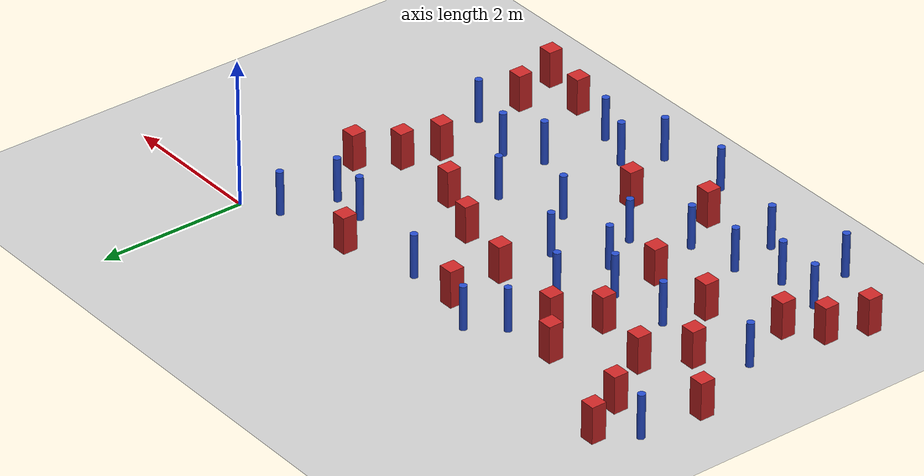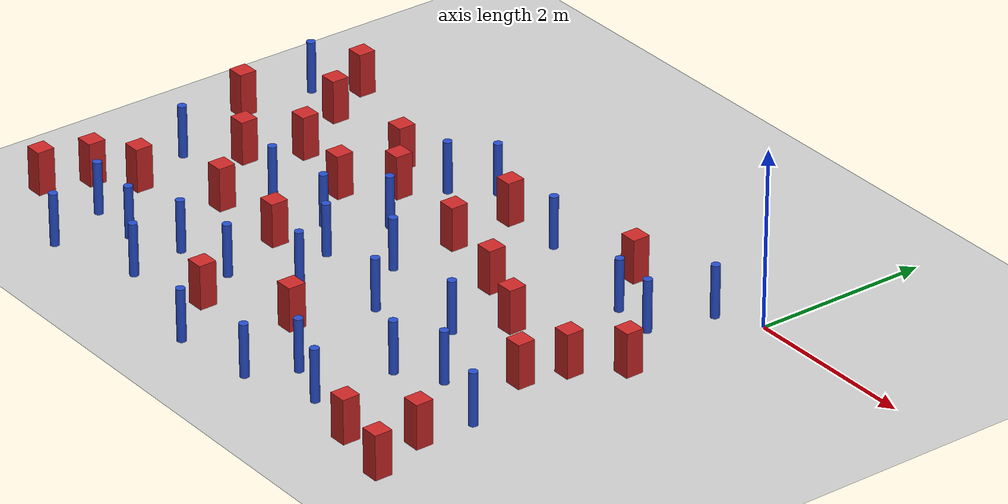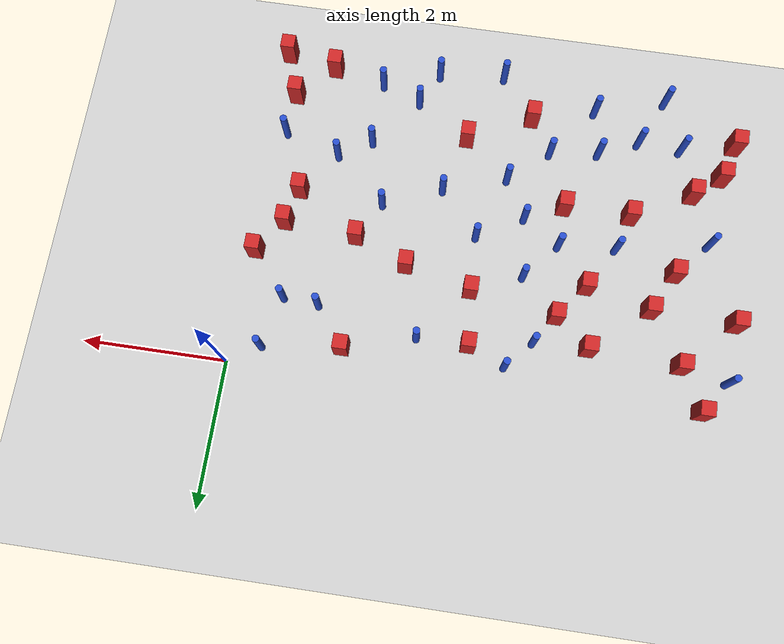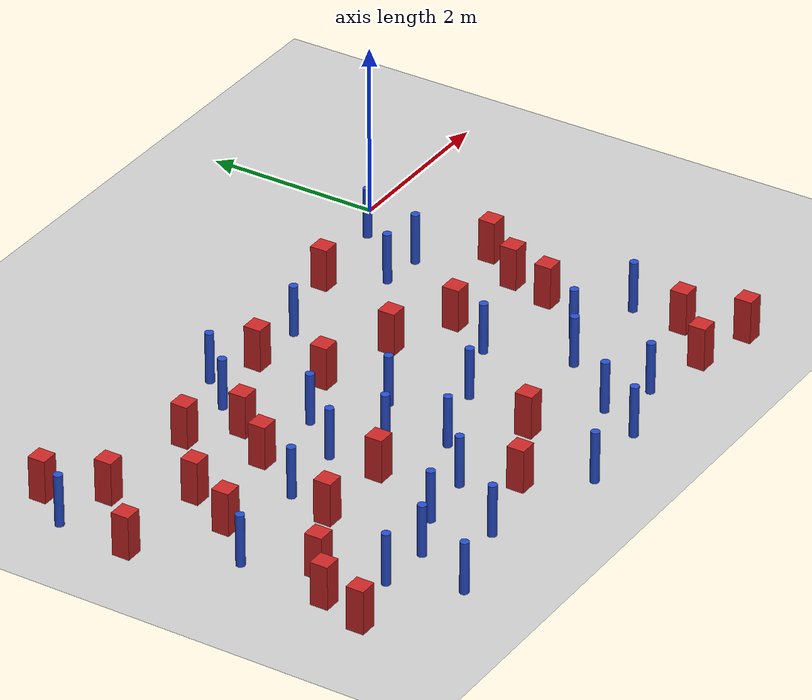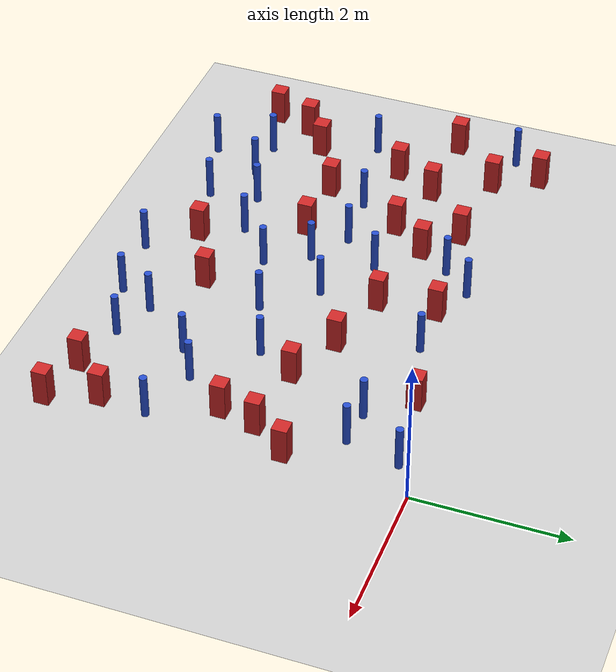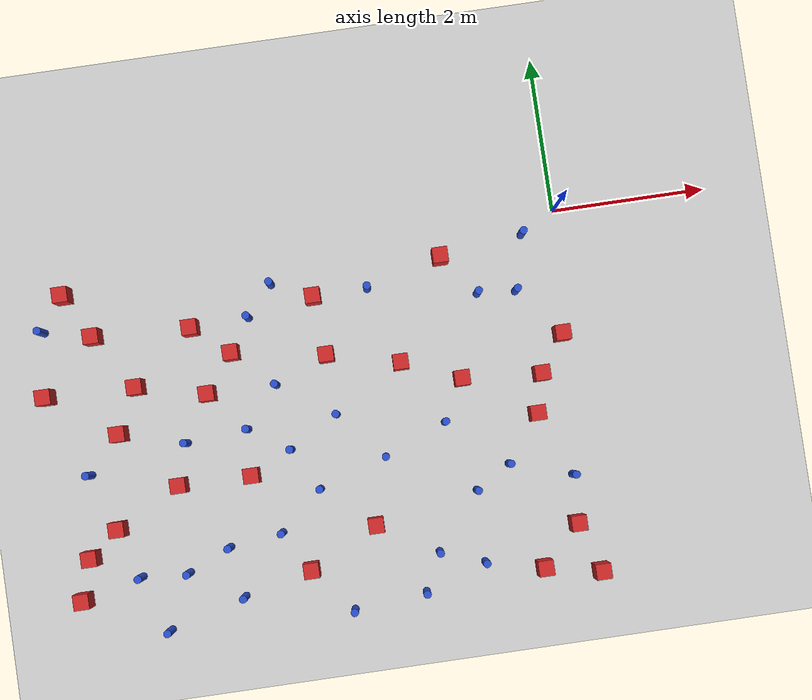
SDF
<sdf version="1.6">
 <world name="default">
  <model name="ground_plane">
   <static>1</static>
   <link name="link">
    <collision name="collision">
     <geometry><plane><normal>0 0 1</normal><size>100 100</size></plane></geometry>
     <surface><friction><ode><mu>100</mu><mu2>50</mu2></ode></friction></surface>
    </collision>
    <visual name="visual">
     <cast_shadows>0</cast_shadows>
     <geometry><plane><normal>0 0 1</normal><size>100 100</size></plane></geometry>
     <material>
      <ambient>1.0 1.0 1.0 1.0</ambient>
      <diffuse>0.8 0.8 0.8 1.0</diffuse>
      <specular>0.01 0.01 0.01 1.000000</specular>
     </material>
    </visual>
   </link>
  </model>
  <model name="pole_obstacle2">
   <static>true</static>
   <pose>-1.79186777275 -2.53418552807 -9.47619616065e-06 5.49618799737e-07 2.36310414062e-07 -1.55090534798e-07</pose>
   <link name="link">
    <pose>0 0 0.3 0 -0 0</pose>
    <inertial>
     <mass>1</mass>
     <inertia><ixx>0.145833</ixx><ixy>0</ixy><ixz>0</ixz><iyy>0.145833</iyy><iyz>0</iyz><izz>0.125</izz></inertia>
    </inertial>
    <collision name="collision">
     <geometry><cylinder><radius>0.05</radius><length>.6</length></cylinder></geometry>
    </collision>
    <visual name="visual">
     <geometry><cylinder><radius>0.05</radius><length>.6</length></cylinder></geometry>
     <material>
      <script><name>Gazebo/Blue</name><uri>file://media/materials/scripts/gazebo.material</uri></script>
     </material>
    </visual>
   </link>
  </model>
  <model name="square_post_obstacle6">
   <static>true</static>
   <pose>-5.98116793809 -2.09496656368 -6.11067671241e-07 -5.50515727128e-06 -8.79689657224e-07 2.37013304536e-05</pose>
   <link name="link">
    <pose>0 0 0.25 0 -0 0</pose>
    <inertial>
     <mass>100</mass>
     <inertia>
      <ixx>0.166667</ixx>
      <ixy>0</ixy>
      <ixz>0</ixz>
      <iyy>0.166667</iyy>
      <iyz>0</iyz>
      <izz>0.166667</izz>
     </inertia>
    </inertial>
    <collision name="collision"><geometry><box><size>.2 .2 .5</size></box></geometry></collision>
    <visual name="visual">
     <geometry><box><size>.2 .2 .5</size></box></geometry>
     <material>
      <script><name>Gazebo/Red</name><uri>file://media/materials/scripts/gazebo.material</uri></script>
     </material>
    </visual>
   </link>
  </model>
  <model name="pole_obstacle9">
   <static>true</static>
   <pose>-5.14063943435 -2.33000956098 -9.47619616065e-06 5.49618799738e-07 2.36310414051e-07 -1.55090534805e-07</pose>
   <link name="link">
    <pose>0 0 0.3 0 -0 0</pose>
    <inertial>
     <mass>1</mass>
     <inertia><ixx>0.145833</ixx><ixy>0</ixy><ixz>0</ixz><iyy>0.145833</iyy><iyz>0</iyz><izz>0.125</izz></inertia>
    </inertial>
    <collision name="collision">
     <geometry><cylinder><radius>0.05</radius><length>.6</length></cylinder></geometry>
    </collision>
    <visual name="visual">
     <geometry><cylinder><radius>0.05</radius><length>.6</length></cylinder></geometry>
     <material>
      <script><name>Gazebo/Blue</name><uri>file://media/materials/scripts/gazebo.material</uri></script>
     </material>
    </visual>
   </link>
  </model>
  <model name="square_post_obstacle17">
   <static>true</static>
   <pose>-5.29909808792 -2.85776680964 -6.11067671241e-07 -5.50515727128e-06 -8.79689657224e-07 2.37013304536e-05</pose>
   <link name="link">
    <pose>0 0 0.25 0 -0 0</pose>
    <inertial>
     <mass>100</mass>
     <inertia>
      <ixx>0.166667</ixx>
      <ixy>0</ixy>
      <ixz>0</ixz>
      <iyy>0.166667</iyy>
      <iyz>0</iyz>
      <izz>0.166667</izz>
     </inertia>
    </inertial>
    <collision name="collision"><geometry><box><size>.2 .2 .5</size></box></geometry></collision>
    <visual name="visual">
     <geometry><box><size>.2 .2 .5</size></box></geometry>
     <material>
      <script><name>Gazebo/Red</name><uri>file://media/materials/scripts/gazebo.material</uri></script>
     </material>
    </visual>
   </link>
  </model>
  <model name="square_post_obstacle19">
   <static>true</static>
   <pose>-3.19186774682 -1.45683344238 -6.11067671241e-07 -5.50515727128e-06 -8.79689657224e-07 2.37013304536e-05</pose>
   <link name="link">
    <pose>0 0 0.25 0 -0 0</pose>
    <inertial>
     <mass>100</mass>
     <inertia>
      <ixx>0.166667</ixx>
      <ixy>0</ixy>
      <ixz>0</ixz>
      <iyy>0.166667</iyy>
      <iyz>0</iyz>
      <izz>0.166667</izz>
     </inertia>
    </inertial>
    <collision name="collision"><geometry><box><size>.2 .2 .5</size></box></geometry></collision>
    <visual name="visual">
     <geometry><box><size>.2 .2 .5</size></box></geometry>
     <material>
      <script><name>Gazebo/Red</name><uri>file://media/materials/scripts/gazebo.material</uri></script>
     </material>
    </visual>
   </link>
  </model>
  <model name="pole_obstacle12">
   <static>true</static>
   <pose>-6.79395257668 -0.647486050733 -9.47619616065e-06 5.49618799737e-07 2.36310414061e-07 -1.550905348e-07</pose>
   <link name="link">
    <pose>0 0 0.3 0 -0 0</pose>
    <inertial>
     <mass>1</mass>
     <inertia><ixx>0.145833</ixx><ixy>0</ixy><ixz>0</ixz><iyy>0.145833</iyy><iyz>0</iyz><izz>0.125</izz></inertia>
    </inertial>
    <collision name="collision">
     <geometry><cylinder><radius>0.05</radius><length>.6</length></cylinder></geometry>
    </collision>
    <visual name="visual">
     <geometry><cylinder><radius>0.05</radius><length>.6</length></cylinder></geometry>
     <material>
      <script><name>Gazebo/Blue</name><uri>file://media/materials/scripts/gazebo.material</uri></script>
     </material>
    </visual>
   </link>
  </model>
  <model name="square_post_obstacle28">
   <static>true</static>
   <pose>-3.76031877844 -4.17054223815 -6.11067671241e-07 -5.50515727128e-06 -8.79689657224e-07 2.37013304536e-05</pose>
   <link name="link">
    <pose>0 0 0.25 0 -0 0</pose>
    <inertial>
     <mass>100</mass>
     <inertia>
      <ixx>0.166667</ixx>
      <ixy>0</ixy>
      <ixz>0</ixz>
      <iyy>0.166667</iyy>
      <iyz>0</iyz>
      <izz>0.166667</izz>
     </inertia>
    </inertial>
    <collision name="collision"><geometry><box><size>.2 .2 .5</size></box></geometry></collision>
    <visual name="visual">
     <geometry><box><size>.2 .2 .5</size></box></geometry>
     <material>
      <script><name>Gazebo/Red</name><uri>file://media/materials/scripts/gazebo.material</uri></script>
     </material>
    </visual>
   </link>
  </model>
  <model name="pole_obstacle29">
   <static>true</static>
   <pose>-0.638371972333 -0.97821930591 -9.47619616065e-06 5.49618799737e-07 2.36310414059e-07 -1.55090534802e-07</pose>
   <link name="link">
    <pose>0 0 0.3 0 -0 0</pose>
    <inertial>
     <mass>1</mass>
     <inertia><ixx>0.145833</ixx><ixy>0</ixy><ixz>0</ixz><iyy>0.145833</iyy><iyz>0</iyz><izz>0.125</izz></inertia>
    </inertial>
    <collision name="collision">
     <geometry><cylinder><radius>0.05</radius><length>.6</length></cylinder></geometry>
    </collision>
    <visual name="visual">
     <geometry><cylinder><radius>0.05</radius><length>.6</length></cylinder></geometry>
     <material>
      <script><name>Gazebo/Blue</name><uri>file://media/materials/scripts/gazebo.material</uri></script>
     </material>
    </visual>
   </link>
  </model>
  <model name="pole_obstacle31">
   <static>true</static>
   <pose>-0.249987154503 -3.43652995144 -9.4761961606e-06 5.49618799729e-07 2.36310413995e-07 -1.55090534826e-07</pose>
   <link name="link">
    <pose>0 0 0.3 0 -0 0</pose>
    <inertial>
     <mass>1</mass>
     <inertia><ixx>0.145833</ixx><ixy>0</ixy><ixz>0</ixz><iyy>0.145833</iyy><iyz>0</iyz><izz>0.125</izz></inertia>
    </inertial>
    <collision name="collision">
     <geometry><cylinder><radius>0.05</radius><length>.6</length></cylinder></geometry>
    </collision>
    <visual name="visual">
     <geometry><cylinder><radius>0.05</radius><length>.6</length></cylinder></geometry>
     <material>
      <script><name>Gazebo/Blue</name><uri>file://media/materials/scripts/gazebo.material</uri></script>
     </material>
    </visual>
   </link>
  </model>
  <model name="square_post_obstacle36">
   <static>true</static>
   <pose>-6.46764427609 -0.218335913427 -6.11067671241e-07 -5.50515727128e-06 -8.79689657224e-07 2.37013304536e-05</pose>
   <link name="link">
    <pose>0 0 0.25 0 -0 0</pose>
    <inertial>
     <mass>100</mass>
     <inertia>
      <ixx>0.166667</ixx>
      <ixy>0</ixy>
      <ixz>0</ixz>
      <iyy>0.166667</iyy>
      <iyz>0</iyz>
      <izz>0.166667</izz>
     </inertia>
    </inertial>
    <collision name="collision"><geometry><box><size>.2 .2 .5</size></box></geometry></collision>
    <visual name="visual">
     <geometry><box><size>.2 .2 .5</size></box></geometry>
     <material>
      <script><name>Gazebo/Red</name><uri>file://media/materials/scripts/gazebo.material</uri></script>
     </material>
    </visual>
   </link>
  </model>
  <model name="square_post_obstacle39">
   <static>true</static>
   <pose>-2.86130558458 -3.72034280299 -6.11067671241e-07 -5.50515727128e-06 -8.79689657224e-07 2.37013304536e-05</pose>
   <link name="link">
    <pose>0 0 0.25 0 -0 0</pose>
    <inertial>
     <mass>100</mass>
     <inertia>
      <ixx>0.166667</ixx>
      <ixy>0</ixy>
      <ixz>0</ixz>
      <iyy>0.166667</iyy>
      <iyz>0</iyz>
      <izz>0.166667</izz>
     </inertia>
    </inertial>
    <collision name="collision"><geometry><box><size>.2 .2 .5</size></box></geometry></collision>
    <visual name="visual">
     <geometry><box><size>.2 .2 .5</size></box></geometry>
     <material>
      <script><name>Gazebo/Red</name><uri>file://media/materials/scripts/gazebo.material</uri></script>
     </material>
    </visual>
   </link>
  </model>
  <model name="pole_obstacle41">
   <static>true</static>
   <pose>-3.283397811 -4.76101472949 -9.4761961606e-06 5.49618799729e-07 2.36310414006e-07 -1.55090534822e-07</pose>
   <link name="link">
    <pose>0 0 0.3 0 -0 0</pose>
    <inertial>
     <mass>1</mass>
     <inertia><ixx>0.145833</ixx><ixy>0</ixy><ixz>0</ixz><iyy>0.145833</iyy><iyz>0</iyz><izz>0.125</izz></inertia>
    </inertial>
    <collision name="collision">
     <geometry><cylinder><radius>0.05</radius><length>.6</length></cylinder></geometry>
    </collision>
    <visual name="visual">
     <geometry><cylinder><radius>0.05</radius><length>.6</length></cylinder></geometry>
     <material>
      <script><name>Gazebo/Blue</name><uri>file://media/materials/scripts/gazebo.material</uri></script>
     </material>
    </visual>
   </link>
  </model>
  <model name="square_post_obstacle42">
   <static>true</static>
   <pose>-6.1515607774 -3.30303571282 -6.11067671241e-07 -5.50515727128e-06 -8.79689657224e-07 2.37013304536e-05</pose>
   <link name="link">
    <pose>0 0 0.25 0 -0 0</pose>
    <inertial>
     <mass>100</mass>
     <inertia>
      <ixx>0.166667</ixx>
      <ixy>0</ixy>
      <ixz>0</ixz>
      <iyy>0.166667</iyy>
      <iyz>0</iyz>
      <izz>0.166667</izz>
     </inertia>
    </inertial>
    <collision name="collision"><geometry><box><size>.2 .2 .5</size></box></geometry></collision>
    <visual name="visual">
     <geometry><box><size>.2 .2 .5</size></box></geometry>
     <material>
      <script><name>Gazebo/Red</name><uri>file://media/materials/scripts/gazebo.material</uri></script>
     </material>
    </visual>
   </link>
  </model>
  <model name="square_post_obstacle56">
   <static>true</static>
   <pose>-4.88189318848 -0.86517226305 -6.11067671241e-07 -5.50515727128e-06 -8.79689657224e-07 2.37013304536e-05</pose>
   <link name="link">
    <pose>0 0 0.25 0 -0 0</pose>
    <inertial>
     <mass>100</mass>
     <inertia>
      <ixx>0.166667</ixx>
      <ixy>0</ixy>
      <ixz>0</ixz>
      <iyy>0.166667</iyy>
      <iyz>0</iyz>
      <izz>0.166667</izz>
     </inertia>
    </inertial>
    <collision name="collision"><geometry><box><size>.2 .2 .5</size></box></geometry></collision>
    <visual name="visual">
     <geometry><box><size>.2 .2 .5</size></box></geometry>
     <material>
      <script><name>Gazebo/Red</name><uri>file://media/materials/scripts/gazebo.material</uri></script>
     </material>
    </visual>
   </link>
  </model>
  <model name="pole_obstacle53">
   <static>true</static>
   <pose>-4.33403917925 -2.2643039477 -9.47619616065e-06 5.49618799738e-07 2.36310414051e-07 -1.55090534805e-07</pose>
   <link name="link">
    <pose>0 0 0.3 0 -0 0</pose>
    <inertial>
     <mass>1</mass>
     <inertia><ixx>0.145833</ixx><ixy>0</ixy><ixz>0</ixz><iyy>0.145833</iyy><iyz>0</iyz><izz>0.125</izz></inertia>
    </inertial>
    <collision name="collision">
     <geometry><cylinder><radius>0.05</radius><length>.6</length></cylinder></geometry>
    </collision>
    <visual name="visual">
     <geometry><cylinder><radius>0.05</radius><length>.6</length></cylinder></geometry>
     <material>
      <script><name>Gazebo/Blue</name><uri>file://media/materials/scripts/gazebo.material</uri></script>
     </material>
    </visual>
   </link>
  </model>
  <model name="pole_obstacle55">
   <static>true</static>
   <pose>-3.89320926153 -1.74636361281 -9.47619616065e-06 5.49618799737e-07 2.3631041403e-07 -1.5509053482e-07</pose>
   <link name="link">
    <pose>0 0 0.3 0 -0 0</pose>
    <inertial>
     <mass>1</mass>
     <inertia><ixx>0.145833</ixx><ixy>0</ixy><ixz>0</ixz><iyy>0.145833</iyy><iyz>0</iyz><izz>0.125</izz></inertia>
    </inertial>
    <collision name="collision">
     <geometry><cylinder><radius>0.05</radius><length>.6</length></cylinder></geometry>
    </collision>
    <visual name="visual">
     <geometry><cylinder><radius>0.05</radius><length>.6</length></cylinder></geometry>
     <material>
      <script><name>Gazebo/Blue</name><uri>file://media/materials/scripts/gazebo.material</uri></script>
     </material>
    </visual>
   </link>
  </model>
  <model name="pole_obstacle63">
   <static>true</static>
   <pose>-3.81595582442 -2.60437558087 -9.47619616065e-06 5.49618799737e-07 2.36310414067e-07 -1.55090534797e-07</pose>
   <link name="link">
    <pose>0 0 0.3 0 -0 0</pose>
    <inertial>
     <mass>1</mass>
     <inertia><ixx>0.145833</ixx><ixy>0</ixy><ixz>0</ixz><iyy>0.145833</iyy><iyz>0</iyz><izz>0.125</izz></inertia>
    </inertial>
    <collision name="collision">
     <geometry><cylinder><radius>0.05</radius><length>.6</length></cylinder></geometry>
    </collision>
    <visual name="visual">
     <geometry><cylinder><radius>0.05</radius><length>.6</length></cylinder></geometry>
     <material>
      <script><name>Gazebo/Blue</name><uri>file://media/materials/scripts/gazebo.material</uri></script>
     </material>
    </visual>
   </link>
  </model>
  <model name="pole_obstacle64">
   <static>true</static>
   <pose>-5.662672163 -4.68568043132 -9.47619616065e-06 5.49618799737e-07 2.36310414037e-07 -1.55090534814e-07</pose>
   <link name="link">
    <pose>0 0 0.3 0 -0 0</pose>
    <inertial>
     <mass>1</mass>
     <inertia><ixx>0.145833</ixx><ixy>0</ixy><ixz>0</ixz><iyy>0.145833</iyy><iyz>0</iyz><izz>0.125</izz></inertia>
    </inertial>
    <collision name="collision">
     <geometry><cylinder><radius>0.05</radius><length>.6</length></cylinder></geometry>
    </collision>
    <visual name="visual">
     <geometry><cylinder><radius>0.05</radius><length>.6</length></cylinder></geometry>
     <material>
      <script><name>Gazebo/Blue</name><uri>file://media/materials/scripts/gazebo.material</uri></script>
     </material>
    </visual>
   </link>
  </model>
  <model name="square_post_obstacle69">
   <static>true</static>
   <pose>-6.54508978789 -3.6239160111 -6.11067671241e-07 -5.50515727128e-06 -8.79689657224e-07 2.37013304536e-05</pose>
   <link name="link">
    <pose>0 0 0.25 0 -0 0</pose>
    <inertial>
     <mass>100</mass>
     <inertia>
      <ixx>0.166667</ixx>
      <ixy>0</ixy>
      <ixz>0</ixz>
      <iyy>0.166667</iyy>
      <iyz>0</iyz>
      <izz>0.166667</izz>
     </inertia>
    </inertial>
    <collision name="collision"><geometry><box><size>.2 .2 .5</size></box></geometry></collision>
    <visual name="visual">
     <geometry><box><size>.2 .2 .5</size></box></geometry>
     <material>
      <script><name>Gazebo/Red</name><uri>file://media/materials/scripts/gazebo.material</uri></script>
     </material>
    </visual>
   </link>
  </model>
  <model name="pole_obstacle74">
   <static>true</static>
   <pose>-2.33988731548 -4.66543023201 -9.47619616065e-06 5.49618799738e-07 2.3631041406e-07 -1.55090534801e-07</pose>
   <link name="link">
    <pose>0 0 0.3 0 -0 0</pose>
    <inertial>
     <mass>1</mass>
     <inertia><ixx>0.145833</ixx><ixy>0</ixy><ixz>0</ixz><iyy>0.145833</iyy><iyz>0</iyz><izz>0.125</izz></inertia>
    </inertial>
    <collision name="collision">
     <geometry><cylinder><radius>0.05</radius><length>.6</length></cylinder></geometry>
    </collision>
    <visual name="visual">
     <geometry><cylinder><radius>0.05</radius><length>.6</length></cylinder></geometry>
     <material>
      <script><name>Gazebo/Blue</name><uri>file://media/materials/scripts/gazebo.material</uri></script>
     </material>
    </visual>
   </link>
  </model>
  <model name="pole_obstacle77">
   <static>true</static>
   <pose>-4.07187399306 -3.64922140474 -9.47619616065e-06 5.49618799738e-07 2.36310414051e-07 -1.55090534805e-07</pose>
   <link name="link">
    <pose>0 0 0.3 0 -0 0</pose>
    <inertial>
     <mass>1</mass>
     <inertia><ixx>0.145833</ixx><ixy>0</ixy><ixz>0</ixz><iyy>0.145833</iyy><iyz>0</iyz><izz>0.125</izz></inertia>
    </inertial>
    <collision name="collision">
     <geometry><cylinder><radius>0.05</radius><length>.6</length></cylinder></geometry>
    </collision>
    <visual name="visual">
     <geometry><cylinder><radius>0.05</radius><length>.6</length></cylinder></geometry>
     <material>
      <script><name>Gazebo/Blue</name><uri>file://media/materials/scripts/gazebo.material</uri></script>
     </material>
    </visual>
   </link>
  </model>
  <model name="pole_obstacle92">
   <static>true</static>
   <pose>-3.78228550767 -0.442074101056 -9.47619616065e-06 5.49618799738e-07 2.36310414074e-07 -1.55090534794e-07</pose>
   <link name="link">
    <pose>0 0 0.3 0 -0 0</pose>
    <inertial>
     <mass>1</mass>
     <inertia><ixx>0.145833</ixx><ixy>0</ixy><ixz>0</ixz><iyy>0.145833</iyy><iyz>0</iyz><izz>0.125</izz></inertia>
    </inertial>
    <collision name="collision">
     <geometry><cylinder><radius>0.05</radius><length>.6</length></cylinder></geometry>
    </collision>
    <visual name="visual">
     <geometry><cylinder><radius>0.05</radius><length>.6</length></cylinder></geometry>
     <material>
      <script><name>Gazebo/Blue</name><uri>file://media/materials/scripts/gazebo.material</uri></script>
     </material>
    </visual>
   </link>
  </model>
  <model name="pole_obstacle93">
   <static>true</static>
   <pose>-6.42854032271 -2.566695863 -9.47619616065e-06 5.49618799738e-07 2.36310414051e-07 -1.55090534805e-07</pose>
   <link name="link">
    <pose>0 0 0.3 0 -0 0</pose>
    <inertial>
     <mass>1</mass>
     <inertia><ixx>0.145833</ixx><ixy>0</ixy><ixz>0</ixz><iyy>0.145833</iyy><iyz>0</iyz><izz>0.125</izz></inertia>
    </inertial>
    <collision name="collision">
     <geometry><cylinder><radius>0.05</radius><length>.6</length></cylinder></geometry>
    </collision>
    <visual name="visual">
     <geometry><cylinder><radius>0.05</radius><length>.6</length></cylinder></geometry>
     <material>
      <script><name>Gazebo/Blue</name><uri>file://media/materials/scripts/gazebo.material</uri></script>
     </material>
    </visual>
   </link>
  </model>
  <model name="pole_obstacle96">
   <static>true</static>
   <pose>-0.458254606706 -0.258063392229 -9.47619616065e-06 5.49618799737e-07 2.36310414049e-07 -1.55090534807e-07</pose>
   <link name="link">
    <pose>0 0 0.3 0 -0 0</pose>
    <inertial>
     <mass>1</mass>
     <inertia><ixx>0.145833</ixx><ixy>0</ixy><ixz>0</ixz><iyy>0.145833</iyy><iyz>0</iyz><izz>0.125</izz></inertia>
    </inertial>
    <collision name="collision">
     <geometry><cylinder><radius>0.05</radius><length>.6</length></cylinder></geometry>
    </collision>
    <visual name="visual">
     <geometry><cylinder><radius>0.05</radius><length>.6</length></cylinder></geometry>
     <material>
      <script><name>Gazebo/Blue</name><uri>file://media/materials/scripts/gazebo.material</uri></script>
     </material>
    </visual>
   </link>
  </model>
  <model name="pole_obstacle100">
   <static>true</static>
   <pose>-5.94358512106 -3.95663519912 -9.47619616065e-06 5.49618799737e-07 2.36310414056e-07 -1.55090534802e-07</pose>
   <link name="link">
    <pose>0 0 0.3 0 -0 0</pose>
    <inertial>
     <mass>1</mass>
     <inertia><ixx>0.145833</ixx><ixy>0</ixy><ixz>0</ixz><iyy>0.145833</iyy><iyz>0</iyz><izz>0.125</izz></inertia>
    </inertial>
    <collision name="collision">
     <geometry><cylinder><radius>0.05</radius><length>.6</length></cylinder></geometry>
    </collision>
    <visual name="visual">
     <geometry><cylinder><radius>0.05</radius><length>.6</length></cylinder></geometry>
     <material>
      <script><name>Gazebo/Blue</name><uri>file://media/materials/scripts/gazebo.material</uri></script>
     </material>
    </visual>
   </link>
  </model>
  <model name="square_post_obstacle88">
   <static>true</static>
   <pose>-0.794922941325 -4.56392146963 -6.11067671241e-07 -5.50515727128e-06 -8.79689657224e-07 2.37013304536e-05</pose>
   <link name="link">
    <pose>0 0 0.25 0 -0 0</pose>
    <inertial>
     <mass>100</mass>
     <inertia>
      <ixx>0.166667</ixx>
      <ixy>0</ixy>
      <ixz>0</ixz>
      <iyy>0.166667</iyy>
      <iyz>0</iyz>
      <izz>0.166667</izz>
     </inertia>
    </inertial>
    <collision name="collision"><geometry><box><size>.2 .2 .5</size></box></geometry></collision>
    <visual name="visual">
     <geometry><box><size>.2 .2 .5</size></box></geometry>
     <material>
      <script><name>Gazebo/Red</name><uri>file://media/materials/scripts/gazebo.material</uri></script>
     </material>
    </visual>
   </link>
  </model>
  <model name="pole_obstacle101">
   <static>true</static>
   <pose>-4.76705694012 -3.73923175541 -9.47619616065e-06 5.49618799738e-07 2.36310414051e-07 -1.55090534805e-07</pose>
   <link name="link">
    <pose>0 0 0.3 0 -0 0</pose>
    <inertial>
     <mass>1</mass>
     <inertia><ixx>0.145833</ixx><ixy>0</ixy><ixz>0</ixz><iyy>0.145833</iyy><iyz>0</iyz><izz>0.125</izz></inertia>
    </inertial>
    <collision name="collision">
     <geometry><cylinder><radius>0.05</radius><length>.6</length></cylinder></geometry>
    </collision>
    <visual name="visual">
     <geometry><cylinder><radius>0.05</radius><length>.6</length></cylinder></geometry>
     <material>
      <script><name>Gazebo/Blue</name><uri>file://media/materials/scripts/gazebo.material</uri></script>
     </material>
    </visual>
   </link>
  </model>
  <model name="square_post_obstacle92">
   <static>true</static>
   <pose>-3.25787131953 -0.684955710244 -6.11067671241e-07 -5.50515727128e-06 -8.79689657224e-07 2.37013304536e-05</pose>
   <link name="link">
    <pose>0 0 0.25 0 -0 0</pose>
    <inertial>
     <mass>100</mass>
     <inertia>
      <ixx>0.166667</ixx>
      <ixy>0</ixy>
      <ixz>0</ixz>
      <iyy>0.166667</iyy>
      <iyz>0</iyz>
      <izz>0.166667</izz>
     </inertia>
    </inertial>
    <collision name="collision"><geometry><box><size>.2 .2 .5</size></box></geometry></collision>
    <visual name="visual">
     <geometry><box><size>.2 .2 .5</size></box></geometry>
     <material>
      <script><name>Gazebo/Red</name><uri>file://media/materials/scripts/gazebo.material</uri></script>
     </material>
    </visual>
   </link>
  </model>
  <model name="square_post_obstacle94">
   <static>true</static>
   <pose>-0.602489581149 -2.59081254262 -6.11067671241e-07 -5.50515727128e-06 -8.79689657224e-07 2.37013304536e-05</pose>
   <link name="link">
    <pose>0 0 0.25 0 -0 0</pose>
    <inertial>
     <mass>100</mass>
     <inertia>
      <ixx>0.166667</ixx>
      <ixy>0</ixy>
      <ixz>0</ixz>
      <iyy>0.166667</iyy>
      <iyz>0</iyz>
      <izz>0.166667</izz>
     </inertia>
    </inertial>
    <collision name="collision"><geometry><box><size>.2 .2 .5</size></box></geometry></collision>
    <visual name="visual">
     <geometry><box><size>.2 .2 .5</size></box></geometry>
     <material>
      <script><name>Gazebo/Red</name><uri>file://media/materials/scripts/gazebo.material</uri></script>
     </material>
    </visual>
   </link>
  </model>
  <model name="pole_obstacle110">
   <static>true</static>
   <pose>-1.04955414656 -3.18440176437 -9.47619616065e-06 5.49618799737e-07 2.36310414065e-07 -1.55090534797e-07</pose>
   <link name="link">
    <pose>0 0 0.3 0 -0 0</pose>
    <inertial>
     <mass>1</mass>
     <inertia><ixx>0.145833</ixx><ixy>0</ixy><ixz>0</ixz><iyy>0.145833</iyy><iyz>0</iyz><izz>0.125</izz></inertia>
    </inertial>
    <collision name="collision">
     <geometry><cylinder><radius>0.05</radius><length>.6</length></cylinder></geometry>
    </collision>
    <visual name="visual">
     <geometry><cylinder><radius>0.05</radius><length>.6</length></cylinder></geometry>
     <material>
      <script><name>Gazebo/Blue</name><uri>file://media/materials/scripts/gazebo.material</uri></script>
     </material>
    </visual>
   </link>
  </model>
  <model name="square_post_obstacle101">
   <static>true</static>
   <pose>-6.85641294886 -1.49352583044 -6.11067671241e-07 -5.50515727128e-06 -8.79689657224e-07 2.37013304536e-05</pose>
   <link name="link">
    <pose>0 0 0.25 0 -0 0</pose>
    <inertial>
     <mass>100</mass>
     <inertia>
      <ixx>0.166667</ixx>
      <ixy>0</ixy>
      <ixz>0</ixz>
      <iyy>0.166667</iyy>
      <iyz>0</iyz>
      <izz>0.166667</izz>
     </inertia>
    </inertial>
    <collision name="collision"><geometry><box><size>.2 .2 .5</size></box></geometry></collision>
    <visual name="visual">
     <geometry><box><size>.2 .2 .5</size></box></geometry>
     <material>
      <script><name>Gazebo/Red</name><uri>file://media/materials/scripts/gazebo.material</uri></script>
     </material>
    </visual>
   </link>
  </model>
  <model name="pole_obstacle117">
   <static>true</static>
   <pose>-1.53523918517 -4.39299262656 -9.47619616065e-06 5.49618799737e-07 2.36310414061e-07 -1.550905348e-07</pose>
   <link name="link">
    <pose>0 0 0.3 0 -0 0</pose>
    <inertial>
     <mass>1</mass>
     <inertia><ixx>0.145833</ixx><ixy>0</ixy><ixz>0</ixz><iyy>0.145833</iyy><iyz>0</iyz><izz>0.125</izz></inertia>
    </inertial>
    <collision name="collision">
     <geometry><cylinder><radius>0.05</radius><length>.6</length></cylinder></geometry>
    </collision>
    <visual name="visual">
     <geometry><cylinder><radius>0.05</radius><length>.6</length></cylinder></geometry>
     <material>
      <script><name>Gazebo/Blue</name><uri>file://media/materials/scripts/gazebo.material</uri></script>
     </material>
    </visual>
   </link>
  </model>
  <model name="square_post_obstacle108">
   <static>true</static>
   <pose>-6.14836141616 -0.800879178616 -6.11067671241e-07 -5.50515727128e-06 -8.79689657224e-07 2.37013304536e-05</pose>
   <link name="link">
    <pose>0 0 0.25 0 -0 0</pose>
    <inertial>
     <mass>100</mass>
     <inertia>
      <ixx>0.166667</ixx>
      <ixy>0</ixy>
      <ixz>0</ixz>
      <iyy>0.166667</iyy>
      <iyz>0</iyz>
      <izz>0.166667</izz>
     </inertia>
    </inertial>
    <collision name="collision"><geometry><box><size>.2 .2 .5</size></box></geometry></collision>
    <visual name="visual">
     <geometry><box><size>.2 .2 .5</size></box></geometry>
     <material>
      <script><name>Gazebo/Red</name><uri>file://media/materials/scripts/gazebo.material</uri></script>
     </material>
    </visual>
   </link>
  </model>
  <model name="pole_obstacle132">
   <static>true</static>
   <pose>-3.50868416105 -3.16170534769 -9.47619616065e-06 5.49618799737e-07 2.36310414051e-07 -1.55090534807e-07</pose>
   <link name="link">
    <pose>0 0 0.3 0 -0 0</pose>
    <inertial>
     <mass>1</mass>
     <inertia><ixx>0.145833</ixx><ixy>0</ixy><ixz>0</ixz><iyy>0.145833</iyy><iyz>0</iyz><izz>0.125</izz></inertia>
    </inertial>
    <collision name="collision">
     <geometry><cylinder><radius>0.05</radius><length>.6</length></cylinder></geometry>
    </collision>
    <visual name="visual">
     <geometry><cylinder><radius>0.05</radius><length>.6</length></cylinder></geometry>
     <material>
      <script><name>Gazebo/Blue</name><uri>file://media/materials/scripts/gazebo.material</uri></script>
     </material>
    </visual>
   </link>
  </model>
  <model name="pole_obstacle134">
   <static>true</static>
   <pose>-4.13046553031 -0.831175590874 -9.47619616065e-06 5.49618799737e-07 2.36310414061e-07 -1.550905348e-07</pose>
   <link name="link">
    <pose>0 0 0.3 0 -0 0</pose>
    <inertial>
     <mass>1</mass>
     <inertia><ixx>0.145833</ixx><ixy>0</ixy><ixz>0</ixz><iyy>0.145833</iyy><iyz>0</iyz><izz>0.125</izz></inertia>
    </inertial>
    <collision name="collision">
     <geometry><cylinder><radius>0.05</radius><length>.6</length></cylinder></geometry>
    </collision>
    <visual name="visual">
     <geometry><cylinder><radius>0.05</radius><length>.6</length></cylinder></geometry>
     <material>
      <script><name>Gazebo/Blue</name><uri>file://media/materials/scripts/gazebo.material</uri></script>
     </material>
    </visual>
   </link>
  </model>
  <model name="pole_obstacle136">
   <static>true</static>
   <pose>-2.61476387222 -2.86941913705 -9.47619616065e-06 5.49618799737e-07 2.36310414051e-07 -1.55090534807e-07</pose>
   <link name="link">
    <pose>0 0 0.3 0 -0 0</pose>
    <inertial>
     <mass>1</mass>
     <inertia><ixx>0.145833</ixx><ixy>0</ixy><ixz>0</ixz><iyy>0.145833</iyy><iyz>0</iyz><izz>0.125</izz></inertia>
    </inertial>
    <collision name="collision">
     <geometry><cylinder><radius>0.05</radius><length>.6</length></cylinder></geometry>
    </collision>
    <visual name="visual">
     <geometry><cylinder><radius>0.05</radius><length>.6</length></cylinder></geometry>
     <material>
      <script><name>Gazebo/Blue</name><uri>file://media/materials/scripts/gazebo.material</uri></script>
     </material>
    </visual>
   </link>
  </model>
  <model name="square_post_obstacle119">
   <static>true</static>
   <pose>-0.473175931429 -2.08969910663 -6.11067671241e-07 -5.50515727128e-06 -8.79689657224e-07 2.37013304536e-05</pose>
   <link name="link">
    <pose>0 0 0.25 0 -0 0</pose>
    <inertial>
     <mass>100</mass>
     <inertia>
      <ixx>0.166667</ixx>
      <ixy>0</ixy>
      <ixz>0</ixz>
      <iyy>0.166667</iyy>
      <iyz>0</iyz>
      <izz>0.166667</izz>
     </inertia>
    </inertial>
    <collision name="collision"><geometry><box><size>.2 .2 .5</size></box></geometry></collision>
    <visual name="visual">
     <geometry><box><size>.2 .2 .5</size></box></geometry>
     <material>
      <script><name>Gazebo/Red</name><uri>file://media/materials/scripts/gazebo.material</uri></script>
     </material>
    </visual>
   </link>
  </model>
  <model name="square_post_obstacle140">
   <static>true</static>
   <pose>-2.25404409048 -1.68947146963 -6.11067671241e-07 -5.50515727128e-06 -8.79689657224e-07 2.37013304536e-05</pose>
   <link name="link">
    <pose>0 0 0.25 0 -0 0</pose>
    <inertial>
     <mass>100</mass>
     <inertia>
      <ixx>0.166667</ixx>
      <ixy>0</ixy>
      <ixz>0</ixz>
      <iyy>0.166667</iyy>
      <iyz>0</iyz>
      <izz>0.166667</izz>
     </inertia>
    </inertial>
    <collision name="collision"><geometry><box><size>.2 .2 .5</size></box></geometry></collision>
    <visual name="visual">
     <geometry><box><size>.2 .2 .5</size></box></geometry>
     <material>
      <script><name>Gazebo/Red</name><uri>file://media/materials/scripts/gazebo.material</uri></script>
     </material>
    </visual>
   </link>
  </model>
  <model name="square_post_obstacle151">
   <static>true</static>
   <pose>-4.3573964451 -2.86501825116 -6.11067671241e-07 -5.50515727128e-06 -8.79689657224e-07 2.37013304536e-05</pose>
   <link name="link">
    <pose>0 0 0.25 0 -0 0</pose>
    <inertial>
     <mass>100</mass>
     <inertia>
      <ixx>0.166667</ixx>
      <ixy>0</ixy>
      <ixz>0</ixz>
      <iyy>0.166667</iyy>
      <iyz>0</iyz>
      <izz>0.166667</izz>
     </inertia>
    </inertial>
    <collision name="collision"><geometry><box><size>.2 .2 .5</size></box></geometry></collision>
    <visual name="visual">
     <geometry><box><size>.2 .2 .5</size></box></geometry>
     <material>
      <script><name>Gazebo/Red</name><uri>file://media/materials/scripts/gazebo.material</uri></script>
     </material>
    </visual>
   </link>
  </model>
  <model name="pole_obstacle160">
   <static>true</static>
   <pose>-1.50854164426 -3.4632188816 -9.47619616065e-06 5.49618799737e-07 2.36310414062e-07 -1.55090534798e-07</pose>
   <link name="link">
    <pose>0 0 0.3 0 -0 0</pose>
    <inertial>
     <mass>1</mass>
     <inertia><ixx>0.145833</ixx><ixy>0</ixy><ixz>0</ixz><iyy>0.145833</iyy><iyz>0</iyz><izz>0.125</izz></inertia>
    </inertial>
    <collision name="collision">
     <geometry><cylinder><radius>0.05</radius><length>.6</length></cylinder></geometry>
    </collision>
    <visual name="visual">
     <geometry><cylinder><radius>0.05</radius><length>.6</length></cylinder></geometry>
     <material>
      <script><name>Gazebo/Blue</name><uri>file://media/materials/scripts/gazebo.material</uri></script>
     </material>
    </visual>
   </link>
  </model>
  <model name="square_post_obstacle157">
   <static>true</static>
   <pose>-0.0779976698466 -4.7074548619 -6.11067671241e-07 -5.50515727128e-06 -8.79689657224e-07 2.37013304536e-05</pose>
   <link name="link">
    <pose>0 0 0.25 0 -0 0</pose>
    <inertial>
     <mass>100</mass>
     <inertia>
      <ixx>0.166667</ixx>
      <ixy>0</ixy>
      <ixz>0</ixz>
      <iyy>0.166667</iyy>
      <iyz>0</iyz>
      <izz>0.166667</izz>
     </inertia>
    </inertial>
    <collision name="collision"><geometry><box><size>.2 .2 .5</size></box></geometry></collision>
    <visual name="visual">
     <geometry><box><size>.2 .2 .5</size></box></geometry>
     <material>
      <script><name>Gazebo/Red</name><uri>file://media/materials/scripts/gazebo.material</uri></script>
     </material>
    </visual>
   </link>
  </model>
  <model name="square_post_obstacle163">
   <static>true</static>
   <pose>-5.68197182133 -1.52638601998 -6.11067671241e-07 -5.50515727128e-06 -8.79689657224e-07 2.37013304536e-05</pose>
   <link name="link">
    <pose>0 0 0.25 0 -0 0</pose>
    <inertial>
     <mass>100</mass>
     <inertia>
      <ixx>0.166667</ixx>
      <ixy>0</ixy>
      <ixz>0</ixz>
      <iyy>0.166667</iyy>
      <iyz>0</iyz>
      <izz>0.166667</izz>
     </inertia>
    </inertial>
    <collision name="collision"><geometry><box><size>.2 .2 .5</size></box></geometry></collision>
    <visual name="visual">
     <geometry><box><size>.2 .2 .5</size></box></geometry>
     <material>
      <script><name>Gazebo/Red</name><uri>file://media/materials/scripts/gazebo.material</uri></script>
     </material>
    </visual>
   </link>
  </model>
  <model name="pole_obstacle174">
   <static>true</static>
   <pose>-3.17152495385 -2.23815379495 -9.47619616065e-06 5.49618799737e-07 2.36310414067e-07 -1.55090534797e-07</pose>
   <link name="link">
    <pose>0 0 0.3 0 -0 0</pose>
    <inertial>
     <mass>1</mass>
     <inertia><ixx>0.145833</ixx><ixy>0</ixy><ixz>0</ixz><iyy>0.145833</iyy><iyz>0</iyz><izz>0.125</izz></inertia>
    </inertial>
    <collision name="collision">
     <geometry><cylinder><radius>0.05</radius><length>.6</length></cylinder></geometry>
    </collision>
    <visual name="visual">
     <geometry><cylinder><radius>0.05</radius><length>.6</length></cylinder></geometry>
     <material>
      <script><name>Gazebo/Blue</name><uri>file://media/materials/scripts/gazebo.material</uri></script>
     </material>
    </visual>
   </link>
  </model>
  <model name="square_post_obstacle171">
   <static>true</static>
   <pose>-4.40380393022 -1.25776412453 -6.11067671241e-07 -5.50515727128e-06 -8.79689657224e-07 2.37013304536e-05</pose>
   <link name="link">
    <pose>0 0 0.25 0 -0 0</pose>
    <inertial>
     <mass>100</mass>
     <inertia>
      <ixx>0.166667</ixx>
      <ixy>0</ixy>
      <ixz>0</ixz>
      <iyy>0.166667</iyy>
      <iyz>0</iyz>
      <izz>0.166667</izz>
     </inertia>
    </inertial>
    <collision name="collision"><geometry><box><size>.2 .2 .5</size></box></geometry></collision>
    <visual name="visual">
     <geometry><box><size>.2 .2 .5</size></box></geometry>
     <material>
      <script><name>Gazebo/Red</name><uri>file://media/materials/scripts/gazebo.material</uri></script>
     </material>
    </visual>
   </link>
  </model>
  <model name="pole_obstacle185">
   <static>true</static>
   <pose>-5.330081267 -3.99014104777 -9.47619616065e-06 5.49618799737e-07 2.36310414056e-07 -1.55090534802e-07</pose>
   <link name="link">
    <pose>0 0 0.3 0 -0 0</pose>
    <inertial>
     <mass>1</mass>
     <inertia><ixx>0.145833</ixx><ixy>0</ixy><ixz>0</ixz><iyy>0.145833</iyy><iyz>0</iyz><izz>0.125</izz></inertia>
    </inertial>
    <collision name="collision">
     <geometry><cylinder><radius>0.05</radius><length>.6</length></cylinder></geometry>
    </collision>
    <visual name="visual">
     <geometry><cylinder><radius>0.05</radius><length>.6</length></cylinder></geometry>
     <material>
      <script><name>Gazebo/Blue</name><uri>file://media/materials/scripts/gazebo.material</uri></script>
     </material>
    </visual>
   </link>
  </model>
  <model name="square_post_obstacle174">
   <static>true</static>
   <pose>-0.293520238909 -4.05893702965 -6.11067671241e-07 -5.50515727128e-06 -8.79689657224e-07 2.37013304536e-05</pose>
   <link name="link">
    <pose>0 0 0.25 0 -0 0</pose>
    <inertial>
     <mass>100</mass>
     <inertia>
      <ixx>0.166667</ixx>
      <ixy>0</ixy>
      <ixz>0</ixz>
      <iyy>0.166667</iyy>
      <iyz>0</iyz>
      <izz>0.166667</izz>
     </inertia>
    </inertial>
    <collision name="collision"><geometry><box><size>.2 .2 .5</size></box></geometry></collision>
    <visual name="visual">
     <geometry><box><size>.2 .2 .5</size></box></geometry>
     <material>
      <script><name>Gazebo/Red</name><uri>file://media/materials/scripts/gazebo.material</uri></script>
     </material>
    </visual>
   </link>
  </model>
  <model name="square_post_obstacle177">
   <static>true</static>
   <pose>-6.71176212044 -4.14454758648 -6.11067671241e-07 -5.50515727128e-06 -8.79689657224e-07 2.37013304536e-05</pose>
   <link name="link">
    <pose>0 0 0.25 0 -0 0</pose>
    <inertial>
     <mass>100</mass>
     <inertia>
      <ixx>0.166667</ixx>
      <ixy>0</ixy>
      <ixz>0</ixz>
      <iyy>0.166667</iyy>
      <iyz>0</iyz>
      <izz>0.166667</izz>
     </inertia>
    </inertial>
    <collision name="collision"><geometry><box><size>.2 .2 .5</size></box></geometry></collision>
    <visual name="visual">
     <geometry><box><size>.2 .2 .5</size></box></geometry>
     <material>
      <script><name>Gazebo/Red</name><uri>file://media/materials/scripts/gazebo.material</uri></script>
     </material>
    </visual>
   </link>
  </model>
  <model name="square_post_obstacle194">
   <static>true</static>
   <pose>-1.55538168423 -0.404827515445 -6.11067671241e-07 -5.50515727128e-06 -8.79689657224e-07 2.37013304536e-05</pose>
   <link name="link">
    <pose>0 0 0.25 0 -0 0</pose>
    <inertial>
     <mass>100</mass>
     <inertia>
      <ixx>0.166667</ixx>
      <ixy>0</ixy>
      <ixz>0</ixz>
      <iyy>0.166667</iyy>
      <iyz>0</iyz>
      <izz>0.166667</izz>
     </inertia>
    </inertial>
    <collision name="collision"><geometry><box><size>.2 .2 .5</size></box></geometry></collision>
    <visual name="visual">
     <geometry><box><size>.2 .2 .5</size></box></geometry>
     <material>
      <script><name>Gazebo/Red</name><uri>file://media/materials/scripts/gazebo.material</uri></script>
     </material>
    </visual>
   </link>
  </model>
  <model name="square_post_obstacle197">
   <static>true</static>
   <pose>-1.50124336922 -2.00827143892 -6.11067671241e-07 -5.50515727128e-06 -8.79689657224e-07 2.37013304536e-05</pose>
   <link name="link">
    <pose>0 0 0.25 0 -0 0</pose>
    <inertial>
     <mass>100</mass>
     <inertia>
      <ixx>0.166667</ixx>
      <ixy>0</ixy>
      <ixz>0</ixz>
      <iyy>0.166667</iyy>
      <iyz>0</iyz>
      <izz>0.166667</izz>
     </inertia>
    </inertial>
    <collision name="collision"><geometry><box><size>.2 .2 .5</size></box></geometry></collision>
    <visual name="visual">
     <geometry><box><size>.2 .2 .5</size></box></geometry>
     <material>
      <script><name>Gazebo/Red</name><uri>file://media/materials/scripts/gazebo.material</uri></script>
     </material>
    </visual>
   </link>
  </model>
  <model name="pole_obstacle188">
   <static>true</static>
   <pose>-2.54601245551 -0.672556392031 -9.47619616065e-06 5.49618799738e-07 2.36310414075e-07 -1.55090534793e-07</pose>
   <link name="link">
    <pose>0 0 0.3 0 -0 0</pose>
    <inertial>
     <mass>1</mass>
     <inertia><ixx>0.145833</ixx><ixy>0</ixy><ixz>0</ixz><iyy>0.145833</iyy><iyz>0</iyz><izz>0.125</izz></inertia>
    </inertial>
    <collision name="collision">
     <geometry><cylinder><radius>0.05</radius><length>.6</length></cylinder></geometry>
    </collision>
    <visual name="visual">
     <geometry><cylinder><radius>0.05</radius><length>.6</length></cylinder></geometry>
     <material>
      <script><name>Gazebo/Blue</name><uri>file://media/materials/scripts/gazebo.material</uri></script>
     </material>
    </visual>
   </link>
  </model>
  <model name="pole_obstacle190">
   <static>true</static>
   <pose>-2.09990057323 -4.17942115754 -9.47619616065e-06 5.49618799738e-07 2.3631041406e-07 -1.55090534801e-07</pose>
   <link name="link">
    <pose>0 0 0.3 0 -0 0</pose>
    <inertial>
     <mass>1</mass>
     <inertia><ixx>0.145833</ixx><ixy>0</ixy><ixz>0</ixz><iyy>0.145833</iyy><iyz>0</iyz><izz>0.125</izz></inertia>
    </inertial>
    <collision name="collision">
     <geometry><cylinder><radius>0.05</radius><length>.6</length></cylinder></geometry>
    </collision>
    <visual name="visual">
     <geometry><cylinder><radius>0.05</radius><length>.6</length></cylinder></geometry>
     <material>
      <script><name>Gazebo/Blue</name><uri>file://media/materials/scripts/gazebo.material</uri></script>
     </material>
    </visual>
   </link>
  </model>
  <model name="pole_obstacle192">
   <static>true</static>
   <pose>-4.65771831304 -4.39294759325 -9.47619616065e-06 5.49618799737e-07 2.36310414037e-07 -1.55090534814e-07</pose>
   <link name="link">
    <pose>0 0 0.3 0 -0 0</pose>
    <inertial>
     <mass>1</mass>
     <inertia><ixx>0.145833</ixx><ixy>0</ixy><ixz>0</ixz><iyy>0.145833</iyy><iyz>0</iyz><izz>0.125</izz></inertia>
    </inertial>
    <collision name="collision">
     <geometry><cylinder><radius>0.05</radius><length>.6</length></cylinder></geometry>
    </collision>
    <visual name="visual">
     <geometry><cylinder><radius>0.05</radius><length>.6</length></cylinder></geometry>
     <material>
      <script><name>Gazebo/Blue</name><uri>file://media/materials/scripts/gazebo.material</uri></script>
     </material>
    </visual>
   </link>
  </model>
  <model name="square_post_obstacle204">
   <static>true</static>
   <pose>-0.135707233493 -1.61465104783 -6.11067671241e-07 -5.50515727128e-06 -8.79689657224e-07 2.37013304536e-05</pose>
   <link name="link">
    <pose>0 0 0.25 0 -0 0</pose>
    <inertial>
     <mass>100</mass>
     <inertia>
      <ixx>0.166667</ixx>
      <ixy>0</ixy>
      <ixz>0</ixz>
      <iyy>0.166667</iyy>
      <iyz>0</iyz>
      <izz>0.166667</izz>
     </inertia>
    </inertial>
    <collision name="collision"><geometry><box><size>.2 .2 .5</size></box></geometry></collision>
    <visual name="visual">
     <geometry><box><size>.2 .2 .5</size></box></geometry>
     <material>
      <script><name>Gazebo/Red</name><uri>file://media/materials/scripts/gazebo.material</uri></script>
     </material>
    </visual>
   </link>
  </model>
  <model name="square_post_obstacle209">
   <static>true</static>
   <pose>-4.77868969856 -1.73992967578 -6.11067671241e-07 -5.50515727128e-06 -8.79689657224e-07 2.37013304536e-05</pose>
   <link name="link">
    <pose>0 0 0.25 0 -0 0</pose>
    <inertial>
     <mass>100</mass>
     <inertia>
      <ixx>0.166667</ixx>
      <ixy>0</ixy>
      <ixz>0</ixz>
      <iyy>0.166667</iyy>
      <iyz>0</iyz>
      <izz>0.166667</izz>
     </inertia>
    </inertial>
    <collision name="collision"><geometry><box><size>.2 .2 .5</size></box></geometry></collision>
    <visual name="visual">
     <geometry><box><size>.2 .2 .5</size></box></geometry>
     <material>
      <script><name>Gazebo/Red</name><uri>file://media/materials/scripts/gazebo.material</uri></script>
     </material>
    </visual>
   </link>
  </model>
  <model name="pole_obstacle222">
   <static>true</static>
   <pose>-1.13724221863 -0.938698753793 -9.47619616065e-06 5.49618799737e-07 2.36310414065e-07 -1.55090534798e-07</pose>
   <link name="link">
    <pose>0 0 0.3 0 -0 0</pose>
    <inertial>
     <mass>1</mass>
     <inertia><ixx>0.145833</ixx><ixy>0</ixy><ixz>0</ixz><iyy>0.145833</iyy><iyz>0</iyz><izz>0.125</izz></inertia>
    </inertial>
    <collision name="collision">
     <geometry><cylinder><radius>0.05</radius><length>.6</length></cylinder></geometry>
    </collision>
    <visual name="visual">
     <geometry><cylinder><radius>0.05</radius><length>.6</length></cylinder></geometry>
     <material>
      <script><name>Gazebo/Blue</name><uri>file://media/materials/scripts/gazebo.material</uri></script>
     </material>
    </visual>
   </link>
  </model>
 </world>
</sdf>
